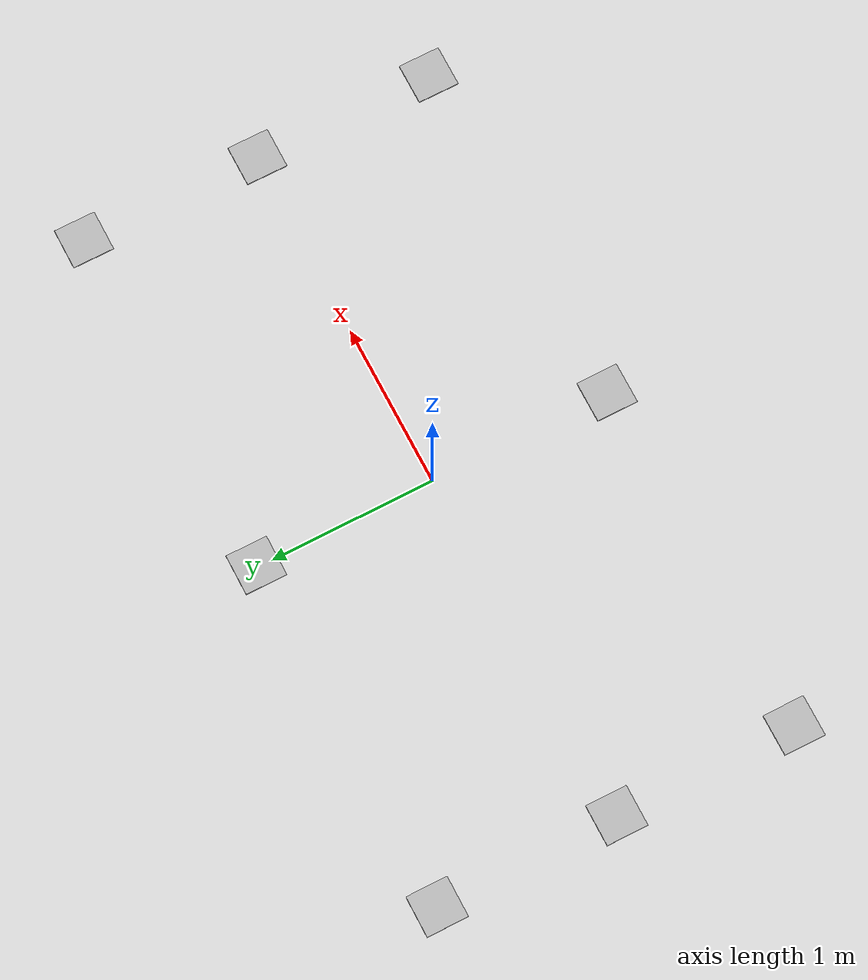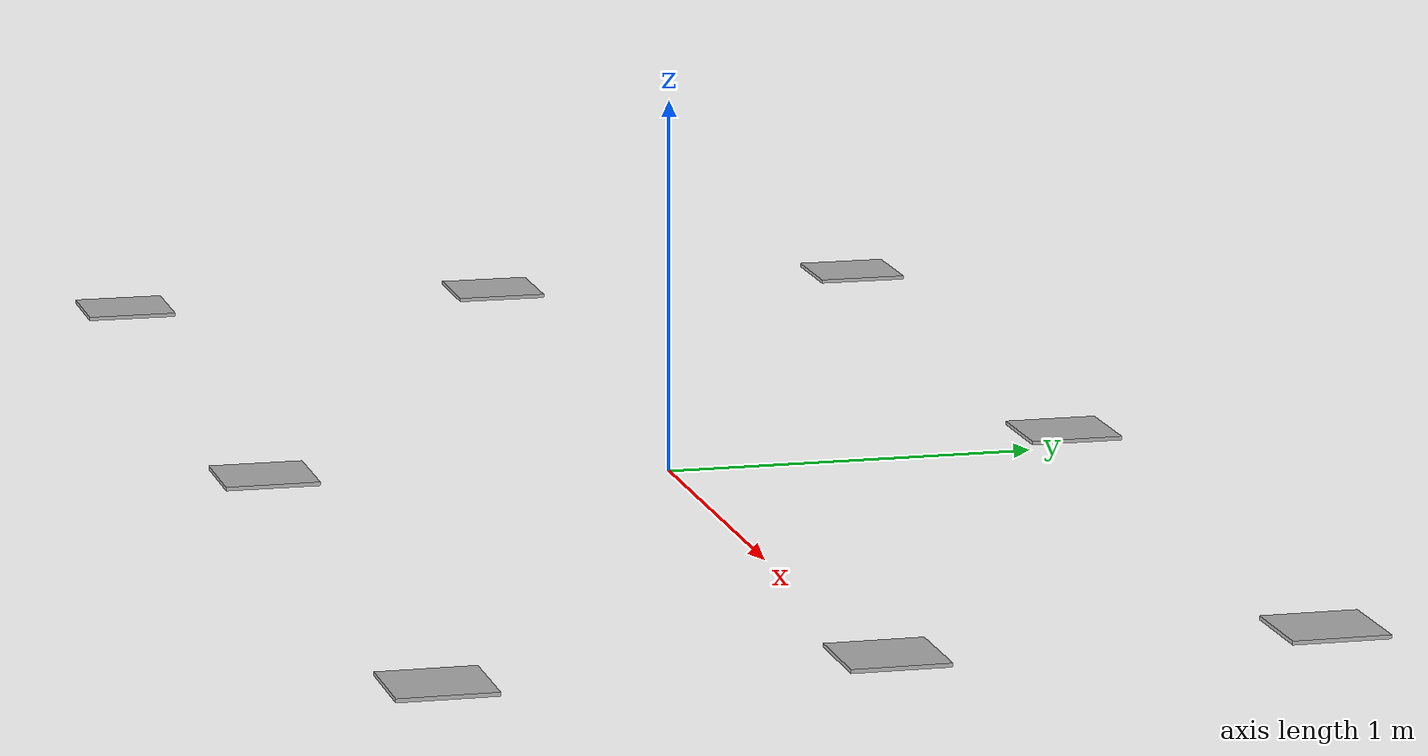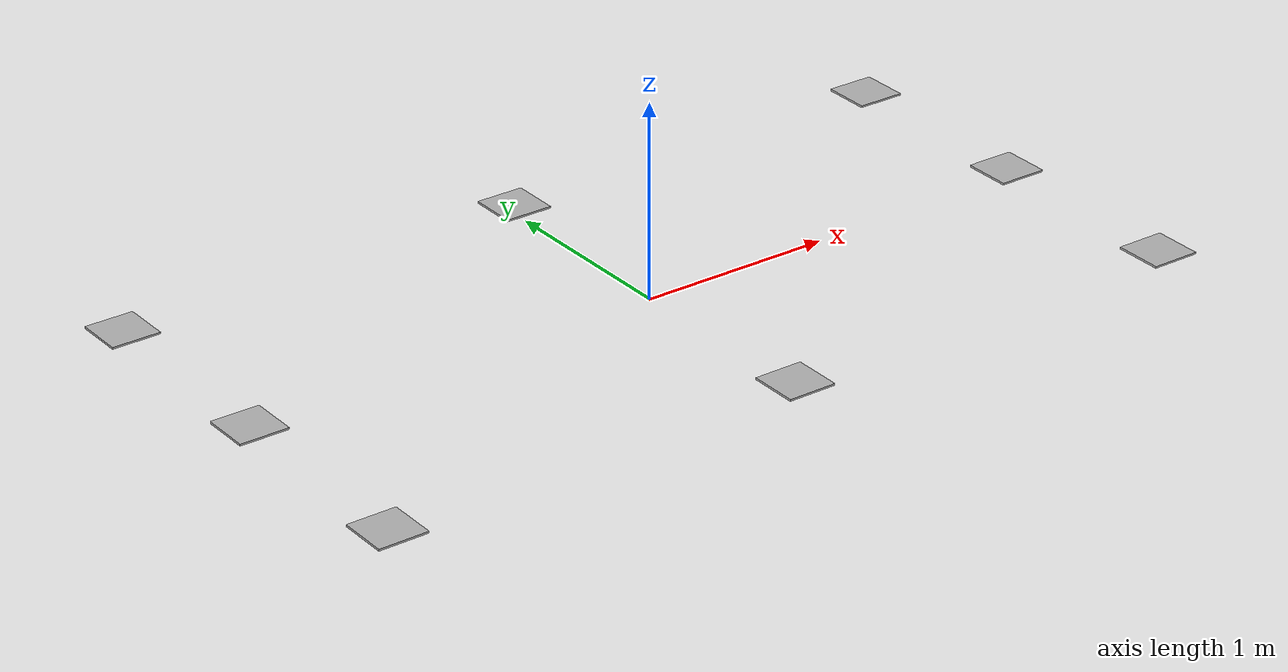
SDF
<?xml version="1.0" ?>
<sdf version="1.6">
  <model name="aruco_board_15x8ft_ring_keep_tiles">
    <static>true</static>
    <pose>0 0 0.050 0 0 0</pose>

    <link name="tile_r0c0">
      <pose>-2.1610 1.0942 0 0 0 0</pose>
      <collision name="collision">
        <geometry><box><size>0.2500 0.2500 0.0100</size></box></geometry>
      </collision>
      <visual name="visual">
        <geometry><box><size>0.2500 0.2500 0.0100</size></box></geometry>
        <material>
          <script>
            <uri>model://aruco_board_15x8ft_ring_keep_tiles/materials/scripts</uri>
            <uri>model://aruco_board_15x8ft_ring_keep_tiles/materials/textures</uri>
            <name>aruco/marker_0</name>
          </script>
        </material>
      </visual>
    </link>

    <link name="tile_r0c1">
      <pose>0.0000 1.0942 0 0 0 0</pose>
      <collision name="collision">
        <geometry><box><size>0.2500 0.2500 0.0100</size></box></geometry>
      </collision>
      <visual name="visual">
        <geometry><box><size>0.2500 0.2500 0.0100</size></box></geometry>
        <material>
          <script>
            <uri>model://aruco_board_15x8ft_ring_keep_tiles/materials/scripts</uri>
            <uri>model://aruco_board_15x8ft_ring_keep_tiles/materials/textures</uri>
            <name>aruco/marker_1</name>
          </script>
        </material>
      </visual>
    </link>

    <link name="tile_r0c2">
      <pose>2.1610 1.0942 0 0 0 0</pose>
      <collision name="collision">
        <geometry><box><size>0.2500 0.2500 0.0100</size></box></geometry>
      </collision>
      <visual name="visual">
        <geometry><box><size>0.2500 0.2500 0.0100</size></box></geometry>
        <material>
          <script>
            <uri>model://aruco_board_15x8ft_ring_keep_tiles/materials/scripts</uri>
            <uri>model://aruco_board_15x8ft_ring_keep_tiles/materials/textures</uri>
            <name>aruco/marker_2</name>
          </script>
        </material>
      </visual>
    </link>

    <link name="tile_r1c0">
      <pose>-2.1610 0.0000 0 0 0 0</pose>
      <collision name="collision">
        <geometry><box><size>0.2500 0.2500 0.0100</size></box></geometry>
      </collision>
      <visual name="visual">
        <geometry><box><size>0.2500 0.2500 0.0100</size></box></geometry>
        <material>
          <script>
            <uri>model://aruco_board_15x8ft_ring_keep_tiles/materials/scripts</uri>
            <uri>model://aruco_board_15x8ft_ring_keep_tiles/materials/textures</uri>
            <name>aruco/marker_3</name>
          </script>
        </material>
      </visual>
    </link>

    <link name="tile_r1c2">
      <pose>2.1610 0.0000 0 0 0 0</pose>
      <collision name="collision">
        <geometry><box><size>0.2500 0.2500 0.0100</size></box></geometry>
      </collision>
      <visual name="visual">
        <geometry><box><size>0.2500 0.2500 0.0100</size></box></geometry>
        <material>
          <script>
            <uri>model://aruco_board_15x8ft_ring_keep_tiles/materials/scripts</uri>
            <uri>model://aruco_board_15x8ft_ring_keep_tiles/materials/textures</uri>
            <name>aruco/marker_4</name>
          </script>
        </material>
      </visual>
    </link>

    <link name="tile_r2c0">
      <pose>-2.1610 -1.0942 0 0 0 0</pose>
      <collision name="collision">
        <geometry><box><size>0.2500 0.2500 0.0100</size></box></geometry>
      </collision>
      <visual name="visual">
        <geometry><box><size>0.2500 0.2500 0.0100</size></box></geometry>
        <material>
          <script>
            <uri>model://aruco_board_15x8ft_ring_keep_tiles/materials/scripts</uri>
            <uri>model://aruco_board_15x8ft_ring_keep_tiles/materials/textures</uri>
            <name>aruco/marker_5</name>
          </script>
        </material>
      </visual>
    </link>

    <link name="tile_r2c1">
      <pose>0.0000 -1.0942 0 0 0 0</pose>
      <collision name="collision">
        <geometry><box><size>0.2500 0.2500 0.0100</size></box></geometry>
      </collision>
      <visual name="visual">
        <geometry><box><size>0.2500 0.2500 0.0100</size></box></geometry>
        <material>
          <script>
            <uri>model://aruco_board_15x8ft_ring_keep_tiles/materials/scripts</uri>
            <uri>model://aruco_board_15x8ft_ring_keep_tiles/materials/textures</uri>
            <name>aruco/marker_6</name>
          </script>
        </material>
      </visual>
    </link>

    <link name="tile_r2c2">
      <pose>2.1610 -1.0942 0 0 0 0</pose>
      <collision name="collision">
        <geometry><box><size>0.2500 0.2500 0.0100</size></box></geometry>
      </collision>
      <visual name="visual">
        <geometry><box><size>0.2500 0.2500 0.0100</size></box></geometry>
        <material>
          <script>
            <uri>model://aruco_board_15x8ft_ring_keep_tiles/materials/scripts</uri>
            <uri>model://aruco_board_15x8ft_ring_keep_tiles/materials/textures</uri>
            <name>aruco/marker_7</name>
          </script>
        </material>
      </visual>
    </link>
  </model>
</sdf>
